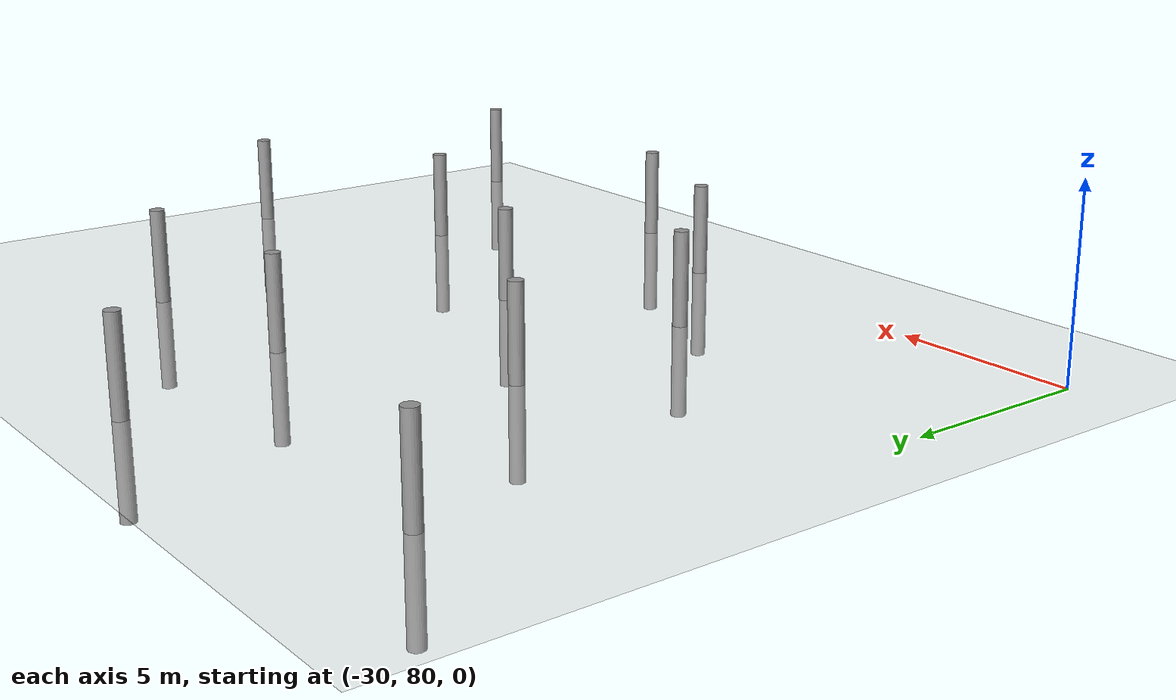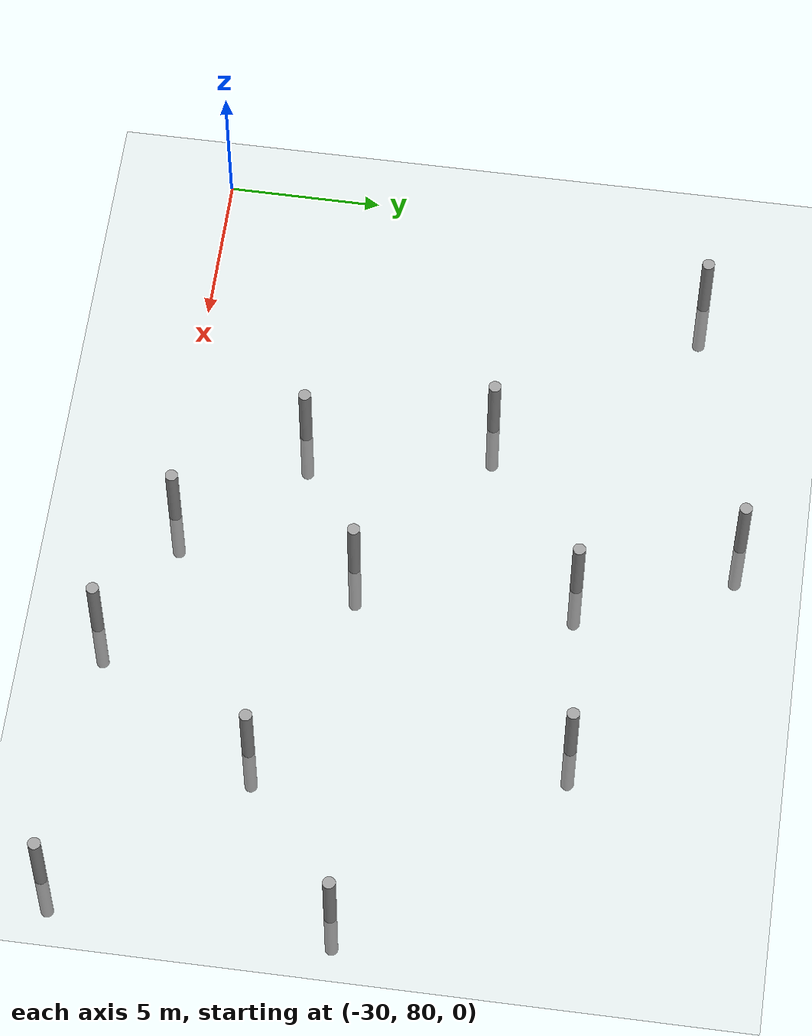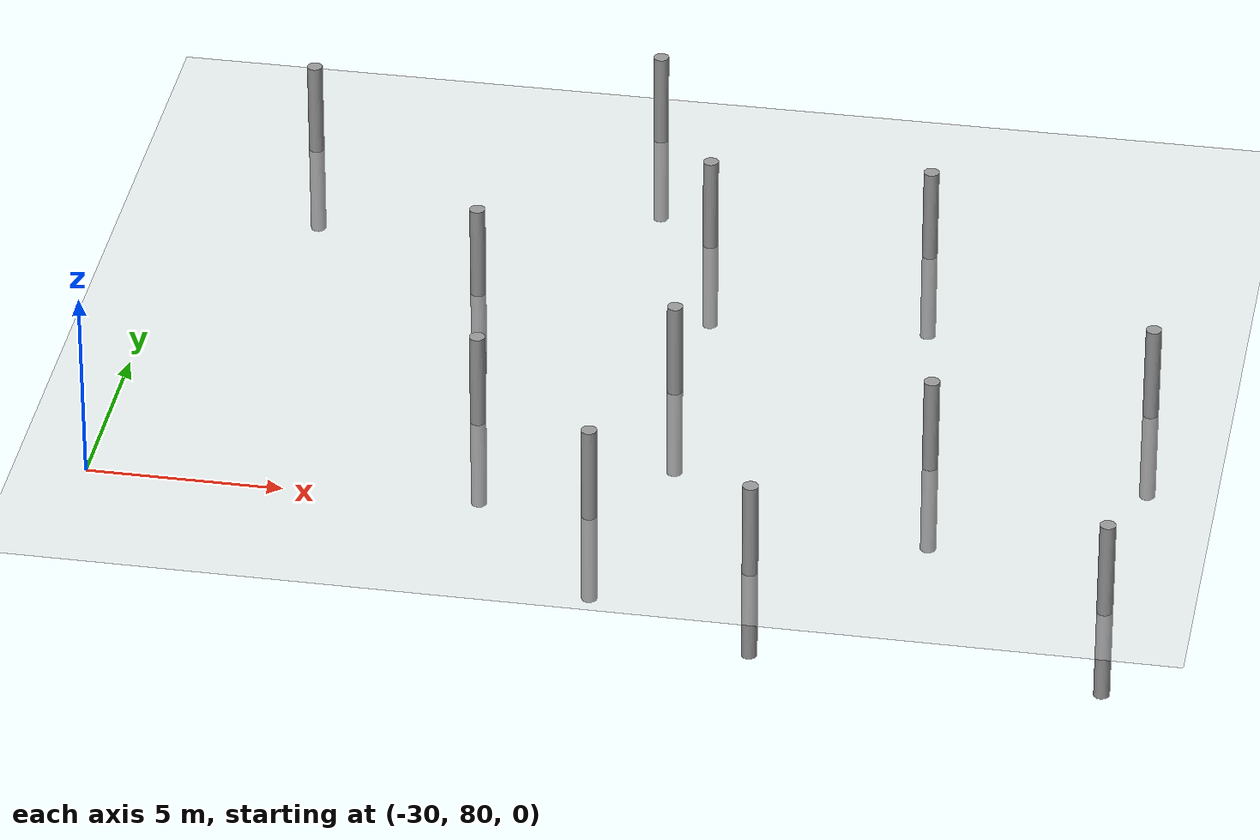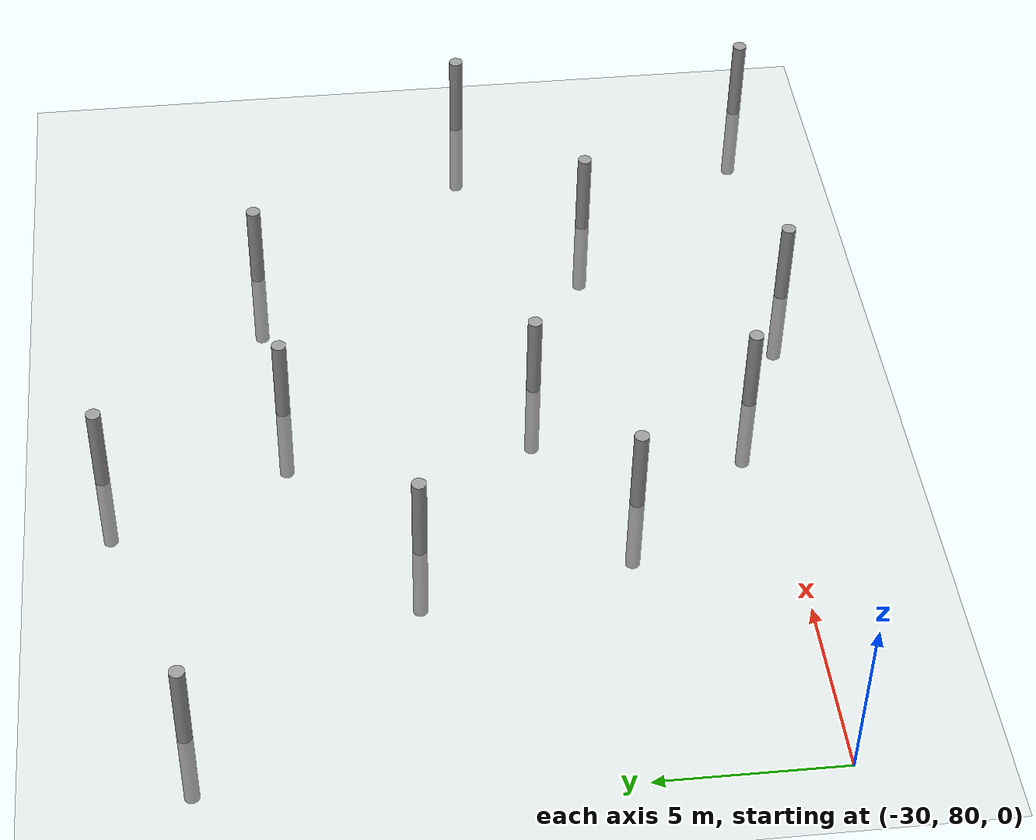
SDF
<sdf version="1.6">
 <world name="default">
  <model name="ground_plane">
   <static>1</static>
   <link name="link">
    <collision name="collision">
     <geometry><plane><normal>0 0 1</normal><size>100 100</size></plane></geometry>
     <surface><friction><ode><mu>100</mu><mu2>50</mu2></ode></friction></surface>
    </collision>
    <visual name="visual">
     <cast_shadows>0</cast_shadows>
     <geometry><plane><normal>0 0 1</normal><size>100 100</size></plane></geometry>
     <material>
      <script><uri>file://media/materials/scripts/gazebo.material</uri><name>Gazebo/Grey</name></script>
     </material>
    </visual>
   </link>
  </model>
  <model name="empty_pillars_0">
   <model name="empty_pillar_clone_1">
    <link name="link">
     <inertial>
      <mass>1</mass>
      <inertia><ixx>0.145833</ixx><ixy>0</ixy><ixz>0</ixz><iyy>0.145833</iyy><iyz>0</iyz><izz>0.125</izz></inertia>
     </inertial>
     <visual name="visual">
      <geometry><cylinder><radius>0.2</radius><length>5</length></cylinder></geometry>
      <material>
       <script><name>Gazebo/Grey</name><uri>file://media/materials/scripts/gazebo.material</uri></script>
       <shader type="vertex"><normal_map>__default__</normal_map></shader>
       <ambient>0.3 0.3 0.3 1</ambient>
       <diffuse>0.7 0.7 0.7 1</diffuse>
       <specular>0.01 0.01 0.01 1</specular>
       <emissive>0 0 0 1</emissive>
      </material>
     </visual>
     <collision name="collision">
      <geometry><cylinder><radius>0.05</radius><length>5</length></cylinder></geometry>
      <surface>
       <friction>
        <ode><mu>1</mu><mu2>1</mu2><fdir1>0 0 0</fdir1><slip1>0</slip1><slip2>0</slip2></ode>
        <torsional>
         <coefficient>1</coefficient>
         <patch_radius>0</patch_radius>
         <surface_radius>0</surface_radius>
         <use_patch_radius>1</use_patch_radius>
         <ode><slip>0</slip></ode>
        </torsional>
       </friction>
       <bounce><restitution_coefficient>0</restitution_coefficient><threshold>1e+06</threshold></bounce>
       <contact>
        <collide_without_contact>0</collide_without_contact>
        <collide_without_contact_bitmask>1</collide_without_contact_bitmask>
        <collide_bitmask>1</collide_bitmask>
        <ode>
         <soft_cfm>0</soft_cfm>
         <soft_erp>0.2</soft_erp>
         <kp>1e+13</kp>
         <kd>1</kd>
         <max_vel>0.01</max_vel>
         <min_depth>0</min_depth>
        </ode>
        <bullet>
         <split_impulse>1</split_impulse>
         <split_impulse_penetration_threshold>-0.01</split_impulse_penetration_threshold>
         <soft_cfm>0</soft_cfm>
         <soft_erp>0.2</soft_erp>
         <kp>1e+13</kp>
         <kd>1</kd>
        </bullet>
       </contact>
      </surface>
     </collision>
    </link>
    <static>0</static>
    <pose>8.92248 2.14838 0 0 -0 0</pose>
   </model>
   <model name="empty_pillar_clone_23">
    <link name="link">
     <inertial>
      <mass>1</mass>
      <inertia><ixx>0.145833</ixx><ixy>0</ixy><ixz>0</ixz><iyy>0.145833</iyy><iyz>0</iyz><izz>0.125</izz></inertia>
     </inertial>
     <visual name="visual">
      <geometry><cylinder><radius>0.2</radius><length>5</length></cylinder></geometry>
      <material>
       <script><name>Gazebo/Grey</name><uri>file://media/materials/scripts/gazebo.material</uri></script>
       <shader type="vertex"><normal_map>__default__</normal_map></shader>
       <ambient>0.3 0.3 0.3 1</ambient>
       <diffuse>0.7 0.7 0.7 1</diffuse>
       <specular>0.01 0.01 0.01 1</specular>
       <emissive>0 0 0 1</emissive>
      </material>
     </visual>
     <collision name="collision">
      <geometry><cylinder><radius>0.05</radius><length>5</length></cylinder></geometry>
      <surface>
       <friction>
        <ode><mu>1</mu><mu2>1</mu2><fdir1>0 0 0</fdir1><slip1>0</slip1><slip2>0</slip2></ode>
        <torsional>
         <coefficient>1</coefficient>
         <patch_radius>0</patch_radius>
         <surface_radius>0</surface_radius>
         <use_patch_radius>1</use_patch_radius>
         <ode><slip>0</slip></ode>
        </torsional>
       </friction>
       <bounce><restitution_coefficient>0</restitution_coefficient><threshold>1e+06</threshold></bounce>
       <contact>
        <collide_without_contact>0</collide_without_contact>
        <collide_without_contact_bitmask>1</collide_without_contact_bitmask>
        <collide_bitmask>1</collide_bitmask>
        <ode>
         <soft_cfm>0</soft_cfm>
         <soft_erp>0.2</soft_erp>
         <kp>1e+13</kp>
         <kd>1</kd>
         <max_vel>0.01</max_vel>
         <min_depth>0</min_depth>
        </ode>
        <bullet>
         <split_impulse>1</split_impulse>
         <split_impulse_penetration_threshold>-0.01</split_impulse_penetration_threshold>
         <soft_cfm>0</soft_cfm>
         <soft_erp>0.2</soft_erp>
         <kp>1e+13</kp>
         <kd>1</kd>
        </bullet>
       </contact>
      </surface>
     </collision>
    </link>
    <static>0</static>
    <pose>-1.21984 18.1273 0 0 -0 0</pose>
   </model>
   <model name="empty_pillar_clone_26">
    <link name="link">
     <inertial>
      <mass>1</mass>
      <inertia><ixx>0.145833</ixx><ixy>0</ixy><ixz>0</ixz><iyy>0.145833</iyy><iyz>0</iyz><izz>0.125</izz></inertia>
     </inertial>
     <visual name="visual">
      <geometry><cylinder><radius>0.2</radius><length>5</length></cylinder></geometry>
      <material>
       <script><name>Gazebo/Grey</name><uri>file://media/materials/scripts/gazebo.material</uri></script>
       <shader type="vertex"><normal_map>__default__</normal_map></shader>
       <ambient>0.3 0.3 0.3 1</ambient>
       <diffuse>0.7 0.7 0.7 1</diffuse>
       <specular>0.01 0.01 0.01 1</specular>
       <emissive>0 0 0 1</emissive>
      </material>
     </visual>
     <collision name="collision">
      <geometry><cylinder><radius>0.05</radius><length>5</length></cylinder></geometry>
      <surface>
       <friction>
        <ode><mu>1</mu><mu2>1</mu2><fdir1>0 0 0</fdir1><slip1>0</slip1><slip2>0</slip2></ode>
        <torsional>
         <coefficient>1</coefficient>
         <patch_radius>0</patch_radius>
         <surface_radius>0</surface_radius>
         <use_patch_radius>1</use_patch_radius>
         <ode><slip>0</slip></ode>
        </torsional>
       </friction>
       <bounce><restitution_coefficient>0</restitution_coefficient><threshold>1e+06</threshold></bounce>
       <contact>
        <collide_without_contact>0</collide_without_contact>
        <collide_without_contact_bitmask>1</collide_without_contact_bitmask>
        <collide_bitmask>1</collide_bitmask>
        <ode>
         <soft_cfm>0</soft_cfm>
         <soft_erp>0.2</soft_erp>
         <kp>1e+13</kp>
         <kd>1</kd>
         <max_vel>0.01</max_vel>
         <min_depth>0</min_depth>
        </ode>
        <bullet>
         <split_impulse>1</split_impulse>
         <split_impulse_penetration_threshold>-0.01</split_impulse_penetration_threshold>
         <soft_cfm>0</soft_cfm>
         <soft_erp>0.2</soft_erp>
         <kp>1e+13</kp>
         <kd>1</kd>
        </bullet>
       </contact>
      </surface>
     </collision>
    </link>
    <static>0</static>
    <pose>7.70652 20.1444 0 0 -0 0</pose>
   </model>
   <model name="empty_pillar_clone_27">
    <link name="link">
     <inertial>
      <mass>1</mass>
      <inertia><ixx>0.145833</ixx><ixy>0</ixy><ixz>0</ixz><iyy>0.145833</iyy><iyz>0</iyz><izz>0.125</izz></inertia>
     </inertial>
     <visual name="visual">
      <geometry><cylinder><radius>0.2</radius><length>5</length></cylinder></geometry>
      <material>
       <script><name>Gazebo/Grey</name><uri>file://media/materials/scripts/gazebo.material</uri></script>
       <shader type="vertex"><normal_map>__default__</normal_map></shader>
       <ambient>0.3 0.3 0.3 1</ambient>
       <diffuse>0.7 0.7 0.7 1</diffuse>
       <specular>0.01 0.01 0.01 1</specular>
       <emissive>0 0 0 1</emissive>
      </material>
     </visual>
     <collision name="collision">
      <geometry><cylinder><radius>0.05</radius><length>5</length></cylinder></geometry>
      <surface>
       <friction>
        <ode><mu>1</mu><mu2>1</mu2><fdir1>0 0 0</fdir1><slip1>0</slip1><slip2>0</slip2></ode>
        <torsional>
         <coefficient>1</coefficient>
         <patch_radius>0</patch_radius>
         <surface_radius>0</surface_radius>
         <use_patch_radius>1</use_patch_radius>
         <ode><slip>0</slip></ode>
        </torsional>
       </friction>
       <bounce><restitution_coefficient>0</restitution_coefficient><threshold>1e+06</threshold></bounce>
       <contact>
        <collide_without_contact>0</collide_without_contact>
        <collide_without_contact_bitmask>1</collide_without_contact_bitmask>
        <collide_bitmask>1</collide_bitmask>
        <ode>
         <soft_cfm>0</soft_cfm>
         <soft_erp>0.2</soft_erp>
         <kp>1e+13</kp>
         <kd>1</kd>
         <max_vel>0.01</max_vel>
         <min_depth>0</min_depth>
        </ode>
        <bullet>
         <split_impulse>1</split_impulse>
         <split_impulse_penetration_threshold>-0.01</split_impulse_penetration_threshold>
         <soft_cfm>0</soft_cfm>
         <soft_erp>0.2</soft_erp>
         <kp>1e+13</kp>
         <kd>1</kd>
        </bullet>
       </contact>
      </surface>
     </collision>
    </link>
    <static>0</static>
    <pose>4.32163 11.823 0 0 -0 0</pose>
   </model>
   <model name="empty_pillar_clone_28">
    <link name="link">
     <inertial>
      <mass>1</mass>
      <inertia><ixx>0.145833</ixx><ixy>0</ixy><ixz>0</ixz><iyy>0.145833</iyy><iyz>0</iyz><izz>0.125</izz></inertia>
     </inertial>
     <visual name="visual">
      <geometry><cylinder><radius>0.2</radius><length>5</length></cylinder></geometry>
      <material>
       <script><name>Gazebo/Grey</name><uri>file://media/materials/scripts/gazebo.material</uri></script>
       <shader type="vertex"><normal_map>__default__</normal_map></shader>
       <ambient>0.3 0.3 0.3 1</ambient>
       <diffuse>0.7 0.7 0.7 1</diffuse>
       <specular>0.01 0.01 0.01 1</specular>
       <emissive>0 0 0 1</emissive>
      </material>
     </visual>
     <collision name="collision">
      <geometry><cylinder><radius>0.05</radius><length>5</length></cylinder></geometry>
      <surface>
       <friction>
        <ode><mu>1</mu><mu2>1</mu2><fdir1>0 0 0</fdir1><slip1>0</slip1><slip2>0</slip2></ode>
        <torsional>
         <coefficient>1</coefficient>
         <patch_radius>0</patch_radius>
         <surface_radius>0</surface_radius>
         <use_patch_radius>1</use_patch_radius>
         <ode><slip>0</slip></ode>
        </torsional>
       </friction>
       <bounce><restitution_coefficient>0</restitution_coefficient><threshold>1e+06</threshold></bounce>
       <contact>
        <collide_without_contact>0</collide_without_contact>
        <collide_without_contact_bitmask>1</collide_without_contact_bitmask>
        <collide_bitmask>1</collide_bitmask>
        <ode>
         <soft_cfm>0</soft_cfm>
         <soft_erp>0.2</soft_erp>
         <kp>1e+13</kp>
         <kd>1</kd>
         <max_vel>0.01</max_vel>
         <min_depth>0</min_depth>
        </ode>
        <bullet>
         <split_impulse>1</split_impulse>
         <split_impulse_penetration_threshold>-0.01</split_impulse_penetration_threshold>
         <soft_cfm>0</soft_cfm>
         <soft_erp>0.2</soft_erp>
         <kp>1e+13</kp>
         <kd>1</kd>
        </bullet>
       </contact>
      </surface>
     </collision>
    </link>
    <static>0</static>
    <pose>15.5447 15.5867 0 0 -0 0</pose>
   </model>
   <model name="empty_pillar_clone_29">
    <link name="link">
     <inertial>
      <mass>1</mass>
      <inertia><ixx>0.145833</ixx><ixy>0</ixy><ixz>0</ixz><iyy>0.145833</iyy><iyz>0</iyz><izz>0.125</izz></inertia>
     </inertial>
     <visual name="visual">
      <geometry><cylinder><radius>0.2</radius><length>5</length></cylinder></geometry>
      <material>
       <script><name>Gazebo/Grey</name><uri>file://media/materials/scripts/gazebo.material</uri></script>
       <shader type="vertex"><normal_map>__default__</normal_map></shader>
       <ambient>0.3 0.3 0.3 1</ambient>
       <diffuse>0.7 0.7 0.7 1</diffuse>
       <specular>0.01 0.01 0.01 1</specular>
       <emissive>0 0 0 1</emissive>
      </material>
     </visual>
     <collision name="collision">
      <geometry><cylinder><radius>0.05</radius><length>5</length></cylinder></geometry>
      <surface>
       <friction>
        <ode><mu>1</mu><mu2>1</mu2><fdir1>0 0 0</fdir1><slip1>0</slip1><slip2>0</slip2></ode>
        <torsional>
         <coefficient>1</coefficient>
         <patch_radius>0</patch_radius>
         <surface_radius>0</surface_radius>
         <use_patch_radius>1</use_patch_radius>
         <ode><slip>0</slip></ode>
        </torsional>
       </friction>
       <bounce><restitution_coefficient>0</restitution_coefficient><threshold>1e+06</threshold></bounce>
       <contact>
        <collide_without_contact>0</collide_without_contact>
        <collide_without_contact_bitmask>1</collide_without_contact_bitmask>
        <collide_bitmask>1</collide_bitmask>
        <ode>
         <soft_cfm>0</soft_cfm>
         <soft_erp>0.2</soft_erp>
         <kp>1e+13</kp>
         <kd>1</kd>
         <max_vel>0.01</max_vel>
         <min_depth>0</min_depth>
        </ode>
        <bullet>
         <split_impulse>1</split_impulse>
         <split_impulse_penetration_threshold>-0.01</split_impulse_penetration_threshold>
         <soft_cfm>0</soft_cfm>
         <soft_erp>0.2</soft_erp>
         <kp>1e+13</kp>
         <kd>1</kd>
        </bullet>
       </contact>
      </surface>
     </collision>
    </link>
    <static>0</static>
    <pose>10.08 8.0876 0 0 -0 0</pose>
   </model>
   <model name="empty_pillar_clone_31">
    <link name="link">
     <inertial>
      <mass>1</mass>
      <inertia><ixx>0.145833</ixx><ixy>0</ixy><ixz>0</ixz><iyy>0.145833</iyy><iyz>0</iyz><izz>0.125</izz></inertia>
     </inertial>
     <visual name="visual">
      <geometry><cylinder><radius>0.2</radius><length>5</length></cylinder></geometry>
      <material>
       <script><name>Gazebo/Grey</name><uri>file://media/materials/scripts/gazebo.material</uri></script>
       <shader type="vertex"><normal_map>__default__</normal_map></shader>
       <ambient>0.3 0.3 0.3 1</ambient>
       <diffuse>0.7 0.7 0.7 1</diffuse>
       <specular>0.01 0.01 0.01 1</specular>
       <emissive>0 0 0 1</emissive>
      </material>
     </visual>
     <collision name="collision">
      <geometry><cylinder><radius>0.05</radius><length>5</length></cylinder></geometry>
      <surface>
       <friction>
        <ode><mu>1</mu><mu2>1</mu2><fdir1>0 0 0</fdir1><slip1>0</slip1><slip2>0</slip2></ode>
        <torsional>
         <coefficient>1</coefficient>
         <patch_radius>0</patch_radius>
         <surface_radius>0</surface_radius>
         <use_patch_radius>1</use_patch_radius>
         <ode><slip>0</slip></ode>
        </torsional>
       </friction>
       <bounce><restitution_coefficient>0</restitution_coefficient><threshold>1e+06</threshold></bounce>
       <contact>
        <collide_without_contact>0</collide_without_contact>
        <collide_without_contact_bitmask>1</collide_without_contact_bitmask>
        <collide_bitmask>1</collide_bitmask>
        <ode>
         <soft_cfm>0</soft_cfm>
         <soft_erp>0.2</soft_erp>
         <kp>1e+13</kp>
         <kd>1</kd>
         <max_vel>0.01</max_vel>
         <min_depth>0</min_depth>
        </ode>
        <bullet>
         <split_impulse>1</split_impulse>
         <split_impulse_penetration_threshold>-0.01</split_impulse_penetration_threshold>
         <soft_cfm>0</soft_cfm>
         <soft_erp>0.2</soft_erp>
         <kp>1e+13</kp>
         <kd>1</kd>
        </bullet>
       </contact>
      </surface>
     </collision>
    </link>
    <static>0</static>
    <pose>22.0722 9.04182 0 0 -0 0</pose>
   </model>
   <model name="empty_pillar_clone_32">
    <link name="link">
     <inertial>
      <mass>1</mass>
      <inertia><ixx>0.145833</ixx><ixy>0</ixy><ixz>0</ixz><iyy>0.145833</iyy><iyz>0</iyz><izz>0.125</izz></inertia>
     </inertial>
     <visual name="visual">
      <geometry><cylinder><radius>0.2</radius><length>5</length></cylinder></geometry>
      <material>
       <script><name>Gazebo/Grey</name><uri>file://media/materials/scripts/gazebo.material</uri></script>
       <shader type="vertex"><normal_map>__default__</normal_map></shader>
       <ambient>0.3 0.3 0.3 1</ambient>
       <diffuse>0.7 0.7 0.7 1</diffuse>
       <specular>0.01 0.01 0.01 1</specular>
       <emissive>0 0 0 1</emissive>
      </material>
     </visual>
     <collision name="collision">
      <geometry><cylinder><radius>0.05</radius><length>5</length></cylinder></geometry>
      <surface>
       <friction>
        <ode><mu>1</mu><mu2>1</mu2><fdir1>0 0 0</fdir1><slip1>0</slip1><slip2>0</slip2></ode>
        <torsional>
         <coefficient>1</coefficient>
         <patch_radius>0</patch_radius>
         <surface_radius>0</surface_radius>
         <use_patch_radius>1</use_patch_radius>
         <ode><slip>0</slip></ode>
        </torsional>
       </friction>
       <bounce><restitution_coefficient>0</restitution_coefficient><threshold>1e+06</threshold></bounce>
       <contact>
        <collide_without_contact>0</collide_without_contact>
        <collide_without_contact_bitmask>1</collide_without_contact_bitmask>
        <collide_bitmask>1</collide_bitmask>
        <ode>
         <soft_cfm>0</soft_cfm>
         <soft_erp>0.2</soft_erp>
         <kp>1e+13</kp>
         <kd>1</kd>
         <max_vel>0.01</max_vel>
         <min_depth>0</min_depth>
        </ode>
        <bullet>
         <split_impulse>1</split_impulse>
         <split_impulse_penetration_threshold>-0.01</split_impulse_penetration_threshold>
         <soft_cfm>0</soft_cfm>
         <soft_erp>0.2</soft_erp>
         <kp>1e+13</kp>
         <kd>1</kd>
        </bullet>
       </contact>
      </surface>
     </collision>
    </link>
    <static>0</static>
    <pose>21.9854 0.15966 0 0 -0 0</pose>
   </model>
   <model name="empty_pillar_clone_49">
    <link name="link">
     <inertial>
      <mass>1</mass>
      <inertia><ixx>0.145833</ixx><ixy>0</ixy><ixz>0</ixz><iyy>0.145833</iyy><iyz>0</iyz><izz>0.125</izz></inertia>
     </inertial>
     <visual name="visual">
      <geometry><cylinder><radius>0.2</radius><length>5</length></cylinder></geometry>
      <material>
       <script><name>Gazebo/Grey</name><uri>file://media/materials/scripts/gazebo.material</uri></script>
       <shader type="vertex"><normal_map>__default__</normal_map></shader>
       <ambient>0.3 0.3 0.3 1</ambient>
       <diffuse>0.7 0.7 0.7 1</diffuse>
       <specular>0.01 0.01 0.01 1</specular>
       <emissive>0 0 0 1</emissive>
      </material>
     </visual>
     <collision name="collision">
      <geometry><cylinder><radius>0.05</radius><length>5</length></cylinder></geometry>
      <surface>
       <friction>
        <ode><mu>1</mu><mu2>1</mu2><fdir1>0 0 0</fdir1><slip1>0</slip1><slip2>0</slip2></ode>
        <torsional>
         <coefficient>1</coefficient>
         <patch_radius>0</patch_radius>
         <surface_radius>0</surface_radius>
         <use_patch_radius>1</use_patch_radius>
         <ode><slip>0</slip></ode>
        </torsional>
       </friction>
       <bounce><restitution_coefficient>0</restitution_coefficient><threshold>1e+06</threshold></bounce>
       <contact>
        <collide_without_contact>0</collide_without_contact>
        <collide_without_contact_bitmask>1</collide_without_contact_bitmask>
        <collide_bitmask>1</collide_bitmask>
        <ode>
         <soft_cfm>0</soft_cfm>
         <soft_erp>0.2</soft_erp>
         <kp>1e+13</kp>
         <kd>1</kd>
         <max_vel>0.01</max_vel>
         <min_depth>0</min_depth>
        </ode>
        <bullet>
         <split_impulse>1</split_impulse>
         <split_impulse_penetration_threshold>-0.01</split_impulse_penetration_threshold>
         <soft_cfm>0</soft_cfm>
         <soft_erp>0.2</soft_erp>
         <kp>1e+13</kp>
         <kd>1</kd>
        </bullet>
       </contact>
      </surface>
     </collision>
    </link>
    <static>0</static>
    <pose>9.84768 15.1425 0 0 -0 0</pose>
   </model>
   <model name="empty_pillar_clone_55">
    <link name="link">
     <inertial>
      <mass>1</mass>
      <inertia><ixx>0.145833</ixx><ixy>0</ixy><ixz>0</ixz><iyy>0.145833</iyy><iyz>0</iyz><izz>0.125</izz></inertia>
     </inertial>
     <visual name="visual">
      <geometry><cylinder><radius>0.2</radius><length>5</length></cylinder></geometry>
      <material>
       <script><name>Gazebo/Grey</name><uri>file://media/materials/scripts/gazebo.material</uri></script>
       <shader type="vertex"><normal_map>__default__</normal_map></shader>
       <ambient>0.3 0.3 0.3 1</ambient>
       <diffuse>0.7 0.7 0.7 1</diffuse>
       <specular>0.01 0.01 0.01 1</specular>
       <emissive>0 0 0 1</emissive>
      </material>
     </visual>
     <collision name="collision">
      <geometry><cylinder><radius>0.05</radius><length>5</length></cylinder></geometry>
      <surface>
       <friction>
        <ode><mu>1</mu><mu2>1</mu2><fdir1>0 0 0</fdir1><slip1>0</slip1><slip2>0</slip2></ode>
        <torsional>
         <coefficient>1</coefficient>
         <patch_radius>0</patch_radius>
         <surface_radius>0</surface_radius>
         <use_patch_radius>1</use_patch_radius>
         <ode><slip>0</slip></ode>
        </torsional>
       </friction>
       <bounce><restitution_coefficient>0</restitution_coefficient><threshold>1e+06</threshold></bounce>
       <contact>
        <collide_without_contact>0</collide_without_contact>
        <collide_without_contact_bitmask>1</collide_without_contact_bitmask>
        <collide_bitmask>1</collide_bitmask>
        <ode>
         <soft_cfm>0</soft_cfm>
         <soft_erp>0.2</soft_erp>
         <kp>1e+13</kp>
         <kd>1</kd>
         <max_vel>0.01</max_vel>
         <min_depth>0</min_depth>
        </ode>
        <bullet>
         <split_impulse>1</split_impulse>
         <split_impulse_penetration_threshold>-0.01</split_impulse_penetration_threshold>
         <soft_cfm>0</soft_cfm>
         <soft_erp>0.2</soft_erp>
         <kp>1e+13</kp>
         <kd>1</kd>
        </bullet>
       </contact>
      </surface>
     </collision>
    </link>
    <static>0</static>
    <pose>13.2247 0.382706 0 0 -0 0</pose>
   </model>
   <model name="empty_pillar_clone_57">
    <link name="link">
     <inertial>
      <mass>1</mass>
      <inertia><ixx>0.145833</ixx><ixy>0</ixy><ixz>0</ixz><iyy>0.145833</iyy><iyz>0</iyz><izz>0.125</izz></inertia>
     </inertial>
     <visual name="visual">
      <geometry><cylinder><radius>0.2</radius><length>5</length></cylinder></geometry>
      <material>
       <script><name>Gazebo/Grey</name><uri>file://media/materials/scripts/gazebo.material</uri></script>
       <shader type="vertex"><normal_map>__default__</normal_map></shader>
       <ambient>0.3 0.3 0.3 1</ambient>
       <diffuse>0.7 0.7 0.7 1</diffuse>
       <specular>0.01 0.01 0.01 1</specular>
       <emissive>0 0 0 1</emissive>
      </material>
     </visual>
     <collision name="collision">
      <geometry><cylinder><radius>0.05</radius><length>5</length></cylinder></geometry>
      <surface>
       <friction>
        <ode><mu>1</mu><mu2>1</mu2><fdir1>0 0 0</fdir1><slip1>0</slip1><slip2>0</slip2></ode>
        <torsional>
         <coefficient>1</coefficient>
         <patch_radius>0</patch_radius>
         <surface_radius>0</surface_radius>
         <use_patch_radius>1</use_patch_radius>
         <ode><slip>0</slip></ode>
        </torsional>
       </friction>
       <bounce><restitution_coefficient>0</restitution_coefficient><threshold>1e+06</threshold></bounce>
       <contact>
        <collide_without_contact>0</collide_without_contact>
        <collide_without_contact_bitmask>1</collide_without_contact_bitmask>
        <collide_bitmask>1</collide_bitmask>
        <ode>
         <soft_cfm>0</soft_cfm>
         <soft_erp>0.2</soft_erp>
         <kp>1e+13</kp>
         <kd>1</kd>
         <max_vel>0.01</max_vel>
         <min_depth>0</min_depth>
        </ode>
        <bullet>
         <split_impulse>1</split_impulse>
         <split_impulse_penetration_threshold>-0.01</split_impulse_penetration_threshold>
         <soft_cfm>0</soft_cfm>
         <soft_erp>0.2</soft_erp>
         <kp>1e+13</kp>
         <kd>1</kd>
        </bullet>
       </contact>
      </surface>
     </collision>
    </link>
    <static>0</static>
    <pose>5.4355 5.86468 0 0 -0 0</pose>
   </model>
   <model name="empty_pillar_clone_7">
    <link name="link">
     <inertial>
      <mass>1</mass>
      <inertia><ixx>0.145833</ixx><ixy>0</ixy><ixz>0</ixz><iyy>0.145833</iyy><iyz>0</iyz><izz>0.125</izz></inertia>
     </inertial>
     <visual name="visual">
      <geometry><cylinder><radius>0.2</radius><length>5</length></cylinder></geometry>
      <material>
       <script><name>Gazebo/Grey</name><uri>file://media/materials/scripts/gazebo.material</uri></script>
       <shader type="vertex"><normal_map>__default__</normal_map></shader>
       <ambient>0.3 0.3 0.3 1</ambient>
       <diffuse>0.7 0.7 0.7 1</diffuse>
       <specular>0.01 0.01 0.01 1</specular>
       <emissive>0 0 0 1</emissive>
      </material>
     </visual>
     <collision name="collision">
      <geometry><cylinder><radius>0.05</radius><length>5</length></cylinder></geometry>
      <surface>
       <friction>
        <ode><mu>1</mu><mu2>1</mu2><fdir1>0 0 0</fdir1><slip1>0</slip1><slip2>0</slip2></ode>
        <torsional>
         <coefficient>1</coefficient>
         <patch_radius>0</patch_radius>
         <surface_radius>0</surface_radius>
         <use_patch_radius>1</use_patch_radius>
         <ode><slip>0</slip></ode>
        </torsional>
       </friction>
       <bounce><restitution_coefficient>0</restitution_coefficient><threshold>1e+06</threshold></bounce>
       <contact>
        <collide_without_contact>0</collide_without_contact>
        <collide_without_contact_bitmask>1</collide_without_contact_bitmask>
        <collide_bitmask>1</collide_bitmask>
        <ode>
         <soft_cfm>0</soft_cfm>
         <soft_erp>0.2</soft_erp>
         <kp>1e+13</kp>
         <kd>1</kd>
         <max_vel>0.01</max_vel>
         <min_depth>0</min_depth>
        </ode>
        <bullet>
         <split_impulse>1</split_impulse>
         <split_impulse_penetration_threshold>-0.01</split_impulse_penetration_threshold>
         <soft_cfm>0</soft_cfm>
         <soft_erp>0.2</soft_erp>
         <kp>1e+13</kp>
         <kd>1</kd>
        </bullet>
       </contact>
      </surface>
     </collision>
    </link>
    <static>0</static>
    <pose>16.9242 5.74519 0 0 -0 0</pose>
   </model>
   <static>0</static>
   <pose>-26.2243 78.0173 0 0 -0 0</pose>
  </model>
 </world>
</sdf>
